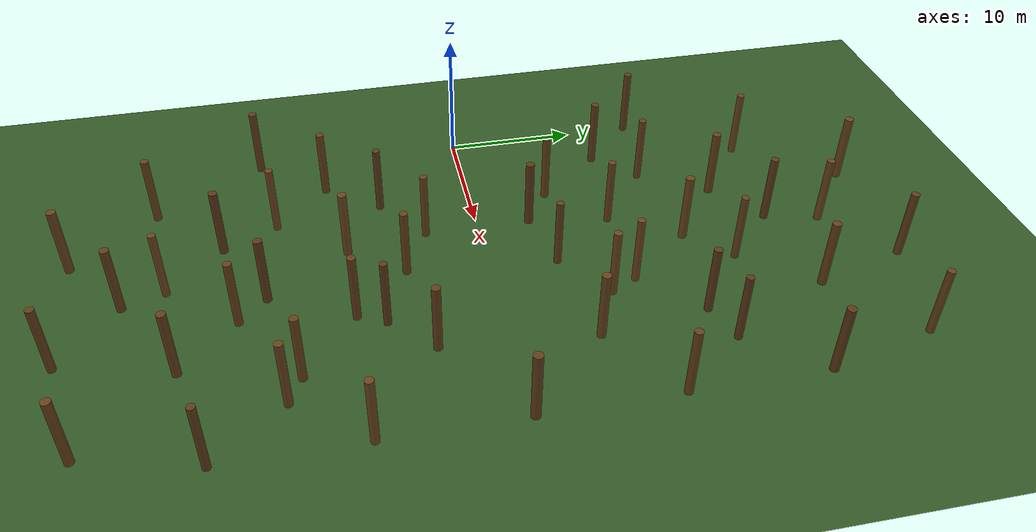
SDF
<sdf version="1.8">
 <world name="forest_world">
  <model name="ground_plane">
   <static>true</static>
   <link name="link">
    <collision name="collision">
     <geometry><plane><normal>0 0 1</normal><size>100 100</size></plane></geometry>
    </collision>
    <visual name="visual">
     <geometry><plane><normal>0 0 1</normal><size>100 100</size></plane></geometry>
     <material><ambient>0.2 0.35 0.15 1</ambient><diffuse>0.2 0.35 0.15 1</diffuse></material>
    </visual>
   </link>
  </model>
  <model name="t004">
   <static>true</static>
   <pose>10 -30 2.7 0 0 0</pose>
   <link name="l">
    <collision name="c">
     <geometry><cylinder><radius>0.34</radius><length>5.4</length></cylinder></geometry>
    </collision>
    <visual name="v">
     <geometry><cylinder><radius>0.34</radius><length>5.4</length></cylinder></geometry>
     <material><ambient>0.40 0.26 0.11 1</ambient><diffuse>0.40 0.26 0.11 1</diffuse></material>
    </visual>
   </link>
  </model>
  <model name="t005">
   <static>true</static>
   <pose>20 -30 2.7 0 0 0</pose>
   <link name="l">
    <collision name="c">
     <geometry><cylinder><radius>0.30</radius><length>5.4</length></cylinder></geometry>
    </collision>
    <visual name="v">
     <geometry><cylinder><radius>0.30</radius><length>5.4</length></cylinder></geometry>
     <material><ambient>0.38 0.24 0.10 1</ambient><diffuse>0.38 0.24 0.10 1</diffuse></material>
    </visual>
   </link>
  </model>
  <model name="t006">
   <static>true</static>
   <pose>28 -28 2.7 0 0 0</pose>
   <link name="l">
    <collision name="c">
     <geometry><cylinder><radius>0.32</radius><length>5.4</length></cylinder></geometry>
    </collision>
    <visual name="v">
     <geometry><cylinder><radius>0.32</radius><length>5.4</length></cylinder></geometry>
     <material><ambient>0.40 0.25 0.10 1</ambient><diffuse>0.40 0.25 0.10 1</diffuse></material>
    </visual>
   </link>
  </model>
  <model name="t007">
   <static>true</static>
   <pose>30 -20 2.7 0 0 0</pose>
   <link name="l">
    <collision name="c">
     <geometry><cylinder><radius>0.28</radius><length>5.4</length></cylinder></geometry>
    </collision>
    <visual name="v">
     <geometry><cylinder><radius>0.28</radius><length>5.4</length></cylinder></geometry>
     <material><ambient>0.36 0.23 0.10 1</ambient><diffuse>0.36 0.23 0.10 1</diffuse></material>
    </visual>
   </link>
  </model>
  <model name="t008">
   <static>true</static>
   <pose>30 -10 2.7 0 0 0</pose>
   <link name="l">
    <collision name="c">
     <geometry><cylinder><radius>0.30</radius><length>5.4</length></cylinder></geometry>
    </collision>
    <visual name="v">
     <geometry><cylinder><radius>0.30</radius><length>5.4</length></cylinder></geometry>
     <material><ambient>0.42 0.27 0.12 1</ambient><diffuse>0.42 0.27 0.12 1</diffuse></material>
    </visual>
   </link>
  </model>
  <model name="t009">
   <static>true</static>
   <pose>30 0 2.7 0 0 0</pose>
   <link name="l">
    <collision name="c">
     <geometry><cylinder><radius>0.34</radius><length>5.4</length></cylinder></geometry>
    </collision>
    <visual name="v">
     <geometry><cylinder><radius>0.34</radius><length>5.4</length></cylinder></geometry>
     <material><ambient>0.38 0.24 0.10 1</ambient><diffuse>0.38 0.24 0.10 1</diffuse></material>
    </visual>
   </link>
  </model>
  <model name="t010">
   <static>true</static>
   <pose>30 10 2.7 0 0 0</pose>
   <link name="l">
    <collision name="c">
     <geometry><cylinder><radius>0.30</radius><length>5.4</length></cylinder></geometry>
    </collision>
    <visual name="v">
     <geometry><cylinder><radius>0.30</radius><length>5.4</length></cylinder></geometry>
     <material><ambient>0.40 0.25 0.10 1</ambient><diffuse>0.40 0.25 0.10 1</diffuse></material>
    </visual>
   </link>
  </model>
  <model name="t011">
   <static>true</static>
   <pose>30 20 2.7 0 0 0</pose>
   <link name="l">
    <collision name="c">
     <geometry><cylinder><radius>0.32</radius><length>5.4</length></cylinder></geometry>
    </collision>
    <visual name="v">
     <geometry><cylinder><radius>0.32</radius><length>5.4</length></cylinder></geometry>
     <material><ambient>0.36 0.22 0.10 1</ambient><diffuse>0.36 0.22 0.10 1</diffuse></material>
    </visual>
   </link>
  </model>
  <model name="t012">
   <static>true</static>
   <pose>28 28 2.7 0 0 0</pose>
   <link name="l">
    <collision name="c">
     <geometry><cylinder><radius>0.28</radius><length>5.4</length></cylinder></geometry>
    </collision>
    <visual name="v">
     <geometry><cylinder><radius>0.28</radius><length>5.4</length></cylinder></geometry>
     <material><ambient>0.40 0.26 0.11 1</ambient><diffuse>0.40 0.26 0.11 1</diffuse></material>
    </visual>
   </link>
  </model>
  <model name="t013">
   <static>true</static>
   <pose>20 30 2.7 0 0 0</pose>
   <link name="l">
    <collision name="c">
     <geometry><cylinder><radius>0.30</radius><length>5.4</length></cylinder></geometry>
    </collision>
    <visual name="v">
     <geometry><cylinder><radius>0.30</radius><length>5.4</length></cylinder></geometry>
     <material><ambient>0.38 0.24 0.10 1</ambient><diffuse>0.38 0.24 0.10 1</diffuse></material>
    </visual>
   </link>
  </model>
  <model name="t014">
   <static>true</static>
   <pose>10 30 2.7 0 0 0</pose>
   <link name="l">
    <collision name="c">
     <geometry><cylinder><radius>0.34</radius><length>5.4</length></cylinder></geometry>
    </collision>
    <visual name="v">
     <geometry><cylinder><radius>0.34</radius><length>5.4</length></cylinder></geometry>
     <material><ambient>0.42 0.27 0.12 1</ambient><diffuse>0.42 0.27 0.12 1</diffuse></material>
    </visual>
   </link>
  </model>
  <model name="t027">
   <static>true</static>
   <pose>5 -24 2.7 0 0 0</pose>
   <link name="l">
    <collision name="c">
     <geometry><cylinder><radius>0.30</radius><length>5.4</length></cylinder></geometry>
    </collision>
    <visual name="v">
     <geometry><cylinder><radius>0.30</radius><length>5.4</length></cylinder></geometry>
     <material><ambient>0.40 0.26 0.11 1</ambient><diffuse>0.40 0.26 0.11 1</diffuse></material>
    </visual>
   </link>
  </model>
  <model name="t028">
   <static>true</static>
   <pose>14 -23 2.7 0 0 0</pose>
   <link name="l">
    <collision name="c">
     <geometry><cylinder><radius>0.28</radius><length>5.4</length></cylinder></geometry>
    </collision>
    <visual name="v">
     <geometry><cylinder><radius>0.28</radius><length>5.4</length></cylinder></geometry>
     <material><ambient>0.42 0.27 0.12 1</ambient><diffuse>0.42 0.27 0.12 1</diffuse></material>
    </visual>
   </link>
  </model>
  <model name="t029">
   <static>true</static>
   <pose>22 -22 2.7 0 0 0</pose>
   <link name="l">
    <collision name="c">
     <geometry><cylinder><radius>0.32</radius><length>5.4</length></cylinder></geometry>
    </collision>
    <visual name="v">
     <geometry><cylinder><radius>0.32</radius><length>5.4</length></cylinder></geometry>
     <material><ambient>0.38 0.24 0.10 1</ambient><diffuse>0.38 0.24 0.10 1</diffuse></material>
    </visual>
   </link>
  </model>
  <model name="t033">
   <static>true</static>
   <pose>0 -16 2.7 0 0 0</pose>
   <link name="l">
    <collision name="c">
     <geometry><cylinder><radius>0.30</radius><length>5.4</length></cylinder></geometry>
    </collision>
    <visual name="v">
     <geometry><cylinder><radius>0.30</radius><length>5.4</length></cylinder></geometry>
     <material><ambient>0.38 0.24 0.10 1</ambient><diffuse>0.38 0.24 0.10 1</diffuse></material>
    </visual>
   </link>
  </model>
  <model name="t034">
   <static>true</static>
   <pose>8 -15 2.7 0 0 0</pose>
   <link name="l">
    <collision name="c">
     <geometry><cylinder><radius>0.28</radius><length>5.4</length></cylinder></geometry>
    </collision>
    <visual name="v">
     <geometry><cylinder><radius>0.28</radius><length>5.4</length></cylinder></geometry>
     <material><ambient>0.42 0.27 0.12 1</ambient><diffuse>0.42 0.27 0.12 1</diffuse></material>
    </visual>
   </link>
  </model>
  <model name="t035">
   <static>true</static>
   <pose>16 -16 2.7 0 0 0</pose>
   <link name="l">
    <collision name="c">
     <geometry><cylinder><radius>0.32</radius><length>5.4</length></cylinder></geometry>
    </collision>
    <visual name="v">
     <geometry><cylinder><radius>0.32</radius><length>5.4</length></cylinder></geometry>
     <material><ambient>0.36 0.22 0.10 1</ambient><diffuse>0.36 0.22 0.10 1</diffuse></material>
    </visual>
   </link>
  </model>
  <model name="t036">
   <static>true</static>
   <pose>24 -14 2.7 0 0 0</pose>
   <link name="l">
    <collision name="c">
     <geometry><cylinder><radius>0.30</radius><length>5.4</length></cylinder></geometry>
    </collision>
    <visual name="v">
     <geometry><cylinder><radius>0.30</radius><length>5.4</length></cylinder></geometry>
     <material><ambient>0.40 0.25 0.10 1</ambient><diffuse>0.40 0.25 0.10 1</diffuse></material>
    </visual>
   </link>
  </model>
  <model name="t040">
   <static>true</static>
   <pose>7 -7 2.7 0 0 0</pose>
   <link name="l">
    <collision name="c">
     <geometry><cylinder><radius>0.28</radius><length>5.4</length></cylinder></geometry>
    </collision>
    <visual name="v">
     <geometry><cylinder><radius>0.28</radius><length>5.4</length></cylinder></geometry>
     <material><ambient>0.36 0.23 0.10 1</ambient><diffuse>0.36 0.23 0.10 1</diffuse></material>
    </visual>
   </link>
  </model>
  <model name="t041">
   <static>true</static>
   <pose>15 -6 2.7 0 0 0</pose>
   <link name="l">
    <collision name="c">
     <geometry><cylinder><radius>0.30</radius><length>5.4</length></cylinder></geometry>
    </collision>
    <visual name="v">
     <geometry><cylinder><radius>0.30</radius><length>5.4</length></cylinder></geometry>
     <material><ambient>0.40 0.25 0.10 1</ambient><diffuse>0.40 0.25 0.10 1</diffuse></material>
    </visual>
   </link>
  </model>
  <model name="t042">
   <static>true</static>
   <pose>23 -5 2.7 0 0 0</pose>
   <link name="l">
    <collision name="c">
     <geometry><cylinder><radius>0.32</radius><length>5.4</length></cylinder></geometry>
    </collision>
    <visual name="v">
     <geometry><cylinder><radius>0.32</radius><length>5.4</length></cylinder></geometry>
     <material><ambient>0.38 0.24 0.10 1</ambient><diffuse>0.38 0.24 0.10 1</diffuse></material>
    </visual>
   </link>
  </model>
  <model name="t046">
   <static>true</static>
   <pose>8 6 2.7 0 0 0</pose>
   <link name="l">
    <collision name="c">
     <geometry><cylinder><radius>0.30</radius><length>5.4</length></cylinder></geometry>
    </collision>
    <visual name="v">
     <geometry><cylinder><radius>0.30</radius><length>5.4</length></cylinder></geometry>
     <material><ambient>0.40 0.25 0.10 1</ambient><diffuse>0.40 0.25 0.10 1</diffuse></material>
    </visual>
   </link>
  </model>
  <model name="t047">
   <static>true</static>
   <pose>16 5 2.7 0 0 0</pose>
   <link name="l">
    <collision name="c">
     <geometry><cylinder><radius>0.28</radius><length>5.4</length></cylinder></geometry>
    </collision>
    <visual name="v">
     <geometry><cylinder><radius>0.28</radius><length>5.4</length></cylinder></geometry>
     <material><ambient>0.38 0.24 0.10 1</ambient><diffuse>0.38 0.24 0.10 1</diffuse></material>
    </visual>
   </link>
  </model>
  <model name="t048">
   <static>true</static>
   <pose>24 6 2.7 0 0 0</pose>
   <link name="l">
    <collision name="c">
     <geometry><cylinder><radius>0.32</radius><length>5.4</length></cylinder></geometry>
    </collision>
    <visual name="v">
     <geometry><cylinder><radius>0.32</radius><length>5.4</length></cylinder></geometry>
     <material><ambient>0.40 0.26 0.11 1</ambient><diffuse>0.40 0.26 0.11 1</diffuse></material>
    </visual>
   </link>
  </model>
  <model name="t052">
   <static>true</static>
   <pose>0 15 2.7 0 0 0</pose>
   <link name="l">
    <collision name="c">
     <geometry><cylinder><radius>0.30</radius><length>5.4</length></cylinder></geometry>
    </collision>
    <visual name="v">
     <geometry><cylinder><radius>0.30</radius><length>5.4</length></cylinder></geometry>
     <material><ambient>0.38 0.24 0.10 1</ambient><diffuse>0.38 0.24 0.10 1</diffuse></material>
    </visual>
   </link>
  </model>
  <model name="t053">
   <static>true</static>
   <pose>7 14 2.7 0 0 0</pose>
   <link name="l">
    <collision name="c">
     <geometry><cylinder><radius>0.28</radius><length>5.4</length></cylinder></geometry>
    </collision>
    <visual name="v">
     <geometry><cylinder><radius>0.28</radius><length>5.4</length></cylinder></geometry>
     <material><ambient>0.40 0.26 0.11 1</ambient><diffuse>0.40 0.26 0.11 1</diffuse></material>
    </visual>
   </link>
  </model>
  <model name="t054">
   <static>true</static>
   <pose>15 15 2.7 0 0 0</pose>
   <link name="l">
    <collision name="c">
     <geometry><cylinder><radius>0.32</radius><length>5.4</length></cylinder></geometry>
    </collision>
    <visual name="v">
     <geometry><cylinder><radius>0.32</radius><length>5.4</length></cylinder></geometry>
     <material><ambient>0.42 0.27 0.12 1</ambient><diffuse>0.42 0.27 0.12 1</diffuse></material>
    </visual>
   </link>
  </model>
  <model name="t055">
   <static>true</static>
   <pose>23 14 2.7 0 0 0</pose>
   <link name="l">
    <collision name="c">
     <geometry><cylinder><radius>0.30</radius><length>5.4</length></cylinder></geometry>
    </collision>
    <visual name="v">
     <geometry><cylinder><radius>0.30</radius><length>5.4</length></cylinder></geometry>
     <material><ambient>0.36 0.22 0.10 1</ambient><diffuse>0.36 0.22 0.10 1</diffuse></material>
    </visual>
   </link>
  </model>
  <model name="t059">
   <static>true</static>
   <pose>5 23 2.7 0 0 0</pose>
   <link name="l">
    <collision name="c">
     <geometry><cylinder><radius>0.28</radius><length>5.4</length></cylinder></geometry>
    </collision>
    <visual name="v">
     <geometry><cylinder><radius>0.28</radius><length>5.4</length></cylinder></geometry>
     <material><ambient>0.42 0.27 0.12 1</ambient><diffuse>0.42 0.27 0.12 1</diffuse></material>
    </visual>
   </link>
  </model>
  <model name="t060">
   <static>true</static>
   <pose>14 22 2.7 0 0 0</pose>
   <link name="l">
    <collision name="c">
     <geometry><cylinder><radius>0.30</radius><length>5.4</length></cylinder></geometry>
    </collision>
    <visual name="v">
     <geometry><cylinder><radius>0.30</radius><length>5.4</length></cylinder></geometry>
     <material><ambient>0.36 0.23 0.10 1</ambient><diffuse>0.36 0.23 0.10 1</diffuse></material>
    </visual>
   </link>
  </model>
  <model name="t061">
   <static>true</static>
   <pose>22 23 2.7 0 0 0</pose>
   <link name="l">
    <collision name="c">
     <geometry><cylinder><radius>0.32</radius><length>5.4</length></cylinder></geometry>
    </collision>
    <visual name="v">
     <geometry><cylinder><radius>0.32</radius><length>5.4</length></cylinder></geometry>
     <material><ambient>0.40 0.25 0.10 1</ambient><diffuse>0.40 0.25 0.10 1</diffuse></material>
    </visual>
   </link>
  </model>
  <model name="t064">
   <static>true</static>
   <pose>12 -10 2.7 0 0 0</pose>
   <link name="l">
    <collision name="c">
     <geometry><cylinder><radius>0.32</radius><length>5.4</length></cylinder></geometry>
    </collision>
    <visual name="v">
     <geometry><cylinder><radius>0.32</radius><length>5.4</length></cylinder></geometry>
     <material><ambient>0.42 0.27 0.12 1</ambient><diffuse>0.42 0.27 0.12 1</diffuse></material>
    </visual>
   </link>
  </model>
  <model name="t065">
   <static>true</static>
   <pose>20 -8 2.7 0 0 0</pose>
   <link name="l">
    <collision name="c">
     <geometry><cylinder><radius>0.28</radius><length>5.4</length></cylinder></geometry>
    </collision>
    <visual name="v">
     <geometry><cylinder><radius>0.28</radius><length>5.4</length></cylinder></geometry>
     <material><ambient>0.36 0.22 0.10 1</ambient><diffuse>0.36 0.22 0.10 1</diffuse></material>
    </visual>
   </link>
  </model>
  <model name="t068">
   <static>true</static>
   <pose>12 10 2.7 0 0 0</pose>
   <link name="l">
    <collision name="c">
     <geometry><cylinder><radius>0.28</radius><length>5.4</length></cylinder></geometry>
    </collision>
    <visual name="v">
     <geometry><cylinder><radius>0.28</radius><length>5.4</length></cylinder></geometry>
     <material><ambient>0.40 0.26 0.11 1</ambient><diffuse>0.40 0.26 0.11 1</diffuse></material>
    </visual>
   </link>
  </model>
  <model name="t069">
   <static>true</static>
   <pose>20 8 2.7 0 0 0</pose>
   <link name="l">
    <collision name="c">
     <geometry><cylinder><radius>0.30</radius><length>5.4</length></cylinder></geometry>
    </collision>
    <visual name="v">
     <geometry><cylinder><radius>0.30</radius><length>5.4</length></cylinder></geometry>
     <material><ambient>0.42 0.27 0.12 1</ambient><diffuse>0.42 0.27 0.12 1</diffuse></material>
    </visual>
   </link>
  </model>
  <model name="t071">
   <static>true</static>
   <pose>18 -18 2.7 0 0 0</pose>
   <link name="l">
    <collision name="c">
     <geometry><cylinder><radius>0.30</radius><length>5.4</length></cylinder></geometry>
    </collision>
    <visual name="v">
     <geometry><cylinder><radius>0.30</radius><length>5.4</length></cylinder></geometry>
     <material><ambient>0.40 0.25 0.10 1</ambient><diffuse>0.40 0.25 0.10 1</diffuse></material>
    </visual>
   </link>
  </model>
  <model name="t073">
   <static>true</static>
   <pose>18 18 2.7 0 0 0</pose>
   <link name="l">
    <collision name="c">
     <geometry><cylinder><radius>0.28</radius><length>5.4</length></cylinder></geometry>
    </collision>
    <visual name="v">
     <geometry><cylinder><radius>0.28</radius><length>5.4</length></cylinder></geometry>
     <material><ambient>0.40 0.26 0.11 1</ambient><diffuse>0.40 0.26 0.11 1</diffuse></material>
    </visual>
   </link>
  </model>
  <model name="t075">
   <static>true</static>
   <pose>10 -19 2.7 0 0 0</pose>
   <link name="l">
    <collision name="c">
     <geometry><cylinder><radius>0.32</radius><length>5.4</length></cylinder></geometry>
    </collision>
    <visual name="v">
     <geometry><cylinder><radius>0.32</radius><length>5.4</length></cylinder></geometry>
     <material><ambient>0.36 0.22 0.10 1</ambient><diffuse>0.36 0.22 0.10 1</diffuse></material>
    </visual>
   </link>
  </model>
  <model name="t077">
   <static>true</static>
   <pose>19 -10 2.7 0 0 0</pose>
   <link name="l">
    <collision name="c">
     <geometry><cylinder><radius>0.30</radius><length>5.4</length></cylinder></geometry>
    </collision>
    <visual name="v">
     <geometry><cylinder><radius>0.30</radius><length>5.4</length></cylinder></geometry>
     <material><ambient>0.38 0.24 0.10 1</ambient><diffuse>0.38 0.24 0.10 1</diffuse></material>
    </visual>
   </link>
  </model>
  <model name="t079">
   <static>true</static>
   <pose>19 10 2.7 0 0 0</pose>
   <link name="l">
    <collision name="c">
     <geometry><cylinder><radius>0.28</radius><length>5.4</length></cylinder></geometry>
    </collision>
    <visual name="v">
     <geometry><cylinder><radius>0.28</radius><length>5.4</length></cylinder></geometry>
     <material><ambient>0.42 0.27 0.12 1</ambient><diffuse>0.42 0.27 0.12 1</diffuse></material>
    </visual>
   </link>
  </model>
  <model name="t081">
   <static>true</static>
   <pose>10 19 2.7 0 0 0</pose>
   <link name="l">
    <collision name="c">
     <geometry><cylinder><radius>0.32</radius><length>5.4</length></cylinder></geometry>
    </collision>
    <visual name="v">
     <geometry><cylinder><radius>0.32</radius><length>5.4</length></cylinder></geometry>
     <material><ambient>0.40 0.25 0.10 1</ambient><diffuse>0.40 0.25 0.10 1</diffuse></material>
    </visual>
   </link>
  </model>
  <model name="t083">
   <static>true</static>
   <pose>26 -15 2.7 0 0 0</pose>
   <link name="l">
    <collision name="c">
     <geometry><cylinder><radius>0.30</radius><length>5.4</length></cylinder></geometry>
    </collision>
    <visual name="v">
     <geometry><cylinder><radius>0.30</radius><length>5.4</length></cylinder></geometry>
     <material><ambient>0.40 0.26 0.11 1</ambient><diffuse>0.40 0.26 0.11 1</diffuse></material>
    </visual>
   </link>
  </model>
  <model name="t085">
   <static>true</static>
   <pose>26 15 2.7 0 0 0</pose>
   <link name="l">
    <collision name="c">
     <geometry><cylinder><radius>0.28</radius><length>5.4</length></cylinder></geometry>
    </collision>
    <visual name="v">
     <geometry><cylinder><radius>0.28</radius><length>5.4</length></cylinder></geometry>
     <material><ambient>0.36 0.22 0.10 1</ambient><diffuse>0.36 0.22 0.10 1</diffuse></material>
    </visual>
   </link>
  </model>
  <model name="t087">
   <static>true</static>
   <pose>15 -26 2.7 0 0 0</pose>
   <link name="l">
    <collision name="c">
     <geometry><cylinder><radius>0.32</radius><length>5.4</length></cylinder></geometry>
    </collision>
    <visual name="v">
     <geometry><cylinder><radius>0.32</radius><length>5.4</length></cylinder></geometry>
     <material><ambient>0.38 0.24 0.10 1</ambient><diffuse>0.38 0.24 0.10 1</diffuse></material>
    </visual>
   </link>
  </model>
  <model name="t089">
   <static>true</static>
   <pose>15 26 2.7 0 0 0</pose>
   <link name="l">
    <collision name="c">
     <geometry><cylinder><radius>0.30</radius><length>5.4</length></cylinder></geometry>
    </collision>
    <visual name="v">
     <geometry><cylinder><radius>0.30</radius><length>5.4</length></cylinder></geometry>
     <material><ambient>0.42 0.27 0.12 1</ambient><diffuse>0.42 0.27 0.12 1</diffuse></material>
    </visual>
   </link>
  </model>
  <model name="t091">
   <static>true</static>
   <pose>4 -11 2.7 0 0 0</pose>
   <link name="l">
    <collision name="c">
     <geometry><cylinder><radius>0.30</radius><length>5.4</length></cylinder></geometry>
    </collision>
    <visual name="v">
     <geometry><cylinder><radius>0.30</radius><length>5.4</length></cylinder></geometry>
     <material><ambient>0.40 0.25 0.10 1</ambient><diffuse>0.40 0.25 0.10 1</diffuse></material>
    </visual>
   </link>
  </model>
  <model name="t093">
   <static>true</static>
   <pose>11 -4 2.7 0 0 0</pose>
   <link name="l">
    <collision name="c">
     <geometry><cylinder><radius>0.28</radius><length>5.4</length></cylinder></geometry>
    </collision>
    <visual name="v">
     <geometry><cylinder><radius>0.28</radius><length>5.4</length></cylinder></geometry>
     <material><ambient>0.40 0.26 0.11 1</ambient><diffuse>0.40 0.26 0.11 1</diffuse></material>
    </visual>
   </link>
  </model>
  <model name="t095">
   <static>true</static>
   <pose>11 4 2.7 0 0 0</pose>
   <link name="l">
    <collision name="c">
     <geometry><cylinder><radius>0.32</radius><length>5.4</length></cylinder></geometry>
    </collision>
    <visual name="v">
     <geometry><cylinder><radius>0.32</radius><length>5.4</length></cylinder></geometry>
     <material><ambient>0.36 0.22 0.10 1</ambient><diffuse>0.36 0.22 0.10 1</diffuse></material>
    </visual>
   </link>
  </model>
  <model name="t097">
   <static>true</static>
   <pose>4 11 2.7 0 0 0</pose>
   <link name="l">
    <collision name="c">
     <geometry><cylinder><radius>0.30</radius><length>5.4</length></cylinder></geometry>
    </collision>
    <visual name="v">
     <geometry><cylinder><radius>0.30</radius><length>5.4</length></cylinder></geometry>
     <material><ambient>0.38 0.24 0.10 1</ambient><diffuse>0.38 0.24 0.10 1</diffuse></material>
    </visual>
   </link>
  </model>
 </world>
</sdf>
